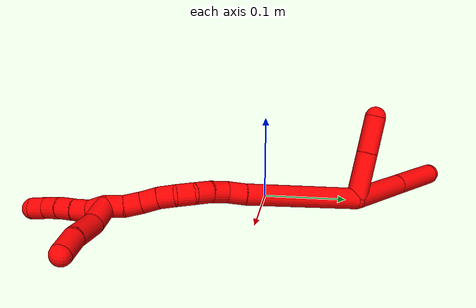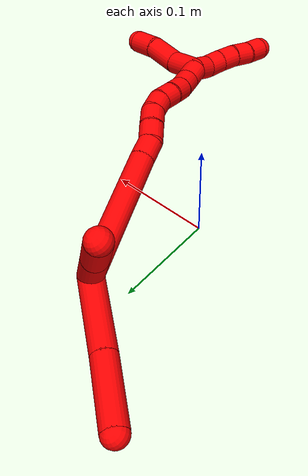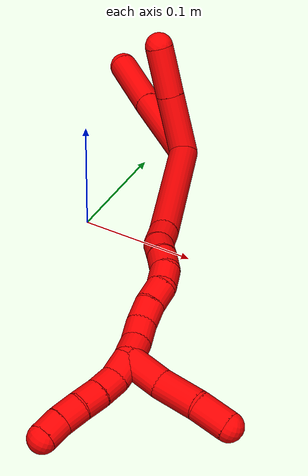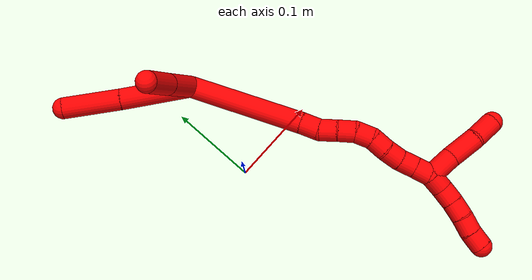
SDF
<sdf version="1.7">
 <world name="default">
  <model name="photoneo_s_sensor">
   <static>1</static>
   <pose>0 0 2 1.57079 1.57079 3.14159</pose>
   <link name="link">
    <inertial><mass>0.1</mass></inertial>
    <sensor name="sensor" type="depth">
     <update_rate>30</update_rate>
     <camera>
      <horizontal_fov>1.22</horizontal_fov>
      <image><width>1920</width><height>1200</height><format>B8G8R8</format></image>
      <clip><near>0.1</near><far>4</far></clip>
      <depth_camera><output>points</output></depth_camera>
     </camera>
     <plugin name="camera_plugin" filename="libgazebo_ros_depth_camera.so">
      <baseline>0.2</baseline>
      <alwaysOn>1</alwaysOn>
      <updateRate>0.0</updateRate>
      <cameraName>camera_ir</cameraName>
      <imageTopicName>/camera/color/image_raw</imageTopicName>
      <cameraInfoTopicName>/camera/color/camera_info</cameraInfoTopicName>
      <depthImageTopicName>/camera/depth/image_raw</depthImageTopicName>
      <depthImageCameraInfoTopicName>/camera/depth/camera_info</depthImageCameraInfoTopicName>
      <pointCloudTopicName>/camera/depth/points</pointCloudTopicName>
      <frameName>fr_optical</frameName>
      <pointCloudCutoff>0.1</pointCloudCutoff>
      <pointCloudCutoffMax>2.0</pointCloudCutoffMax>
      <distortionK1>0</distortionK1>
      <distortionK2>0</distortionK2>
      <distortionK3>0</distortionK3>
      <distortionT1>0</distortionT1>
      <distortionT2>0</distortionT2>
      <CxPrime>0</CxPrime>
      <Cx>0</Cx>
      <Cy>0</Cy>
      <focalLength>0</focalLength>
      <hackBaseline>0</hackBaseline>
     </plugin>
    </sensor>
   </link>
  </model>
  <model name="bin">
   <static>1</static>
   <link name="bottom">
    <collision name="collision-bottom">
     <pose>0 0 -0.01 0 -0 0</pose>
     <geometry><box><size>0.8 0.6 0.02</size></box></geometry>
     <surface>
      <friction><ode><mu>100</mu><mu2>100</mu2></ode></friction>
      <contact><collide_bitmask>65535</collide_bitmask></contact>
     </surface>
    </collision>
   </link>
   <link name="west_wall">
    <collision name="collision-west_wall">
     <pose>-0.41 0 0.1 0 -0 0</pose>
     <geometry><box><size>0.02 0.6 0.2</size></box></geometry>
     <surface>
      <friction><ode><mu>100</mu><mu2>100</mu2></ode></friction>
      <contact><collide_bitmask>65535</collide_bitmask></contact>
     </surface>
    </collision>
   </link>
   <link name="east_wall">
    <collision name="collision-east_wall">
     <pose>0.41 0 0.1 0 -0 0</pose>
     <geometry><box><size>0.02 0.6 0.2</size></box></geometry>
     <surface>
      <friction><ode><mu>100</mu><mu2>100</mu2></ode></friction>
      <contact><collide_bitmask>65535</collide_bitmask></contact>
     </surface>
    </collision>
   </link>
   <link name="south_wall">
    <collision name="collision-south_wall">
     <pose>0 -0.31 0.1 0 -0 0</pose>
     <geometry><box><size>0.8 0.02 0.2</size></box></geometry>
     <surface>
      <friction><ode><mu>100</mu><mu2>100</mu2></ode></friction>
      <contact><collide_bitmask>65535</collide_bitmask></contact>
     </surface>
    </collision>
   </link>
   <link name="north_wall">
    <collision name="collision-north_wall">
     <pose>0 0.31 0.1 0 -0 0</pose>
     <geometry><box><size>0.8 0.02 0.2</size></box></geometry>
     <surface>
      <friction><ode><mu>100</mu><mu2>100</mu2></ode></friction>
      <contact><collide_bitmask>65535</collide_bitmask></contact>
     </surface>
    </collision>
   </link>
  </model>
  <model name="2">
   <static>0</static>
   <link name="2">
    <collision name="collision-cylinder-e_1_2_8">
     <pose>-0.034965 0.021528 -0.001807 -1.65454 -1.01734 1.0902</pose>
     <geometry><cylinder><radius>0.0125</radius><length>0.082201</length></cylinder></geometry>
     <surface>
      <friction><ode><mu>1.16</mu><mu2>1.16</mu2><slip1>0</slip1><slip2>0</slip2></ode></friction>
      <contact><ode><kp>1e+06</kp><kd>1</kd><max_vel>0</max_vel><min_depth>0.001</min_depth></ode></contact>
     </surface>
    </collision>
    <visual name="visual-cylinder-e_1_2_8">
     <pose>-0.034965 0.021528 -0.001807 -1.65454 -1.01734 1.0902</pose>
     <geometry><cylinder><radius>0.0125</radius><length>0.082201</length></cylinder></geometry>
     <material><ambient>1 0 0 1</ambient></material>
    </visual>
    <collision name="collision-cylinder-e_2_8_6">
     <pose>-0.098506 0.061277 -0.004342 -1.61073 -1.00281 1.03684</pose>
     <geometry><cylinder><radius>0.0125</radius><length>0.067799</length></cylinder></geometry>
     <surface>
      <friction><ode><mu>1.16</mu><mu2>1.16</mu2><slip1>0</slip1><slip2>0</slip2></ode></friction>
      <contact><ode><kp>1e+06</kp><kd>1</kd><max_vel>0</max_vel><min_depth>0.001</min_depth></ode></contact>
     </surface>
    </collision>
    <visual name="visual-cylinder-e_2_8_6">
     <pose>-0.098506 0.061277 -0.004342 -1.61073 -1.00281 1.03684</pose>
     <geometry><cylinder><radius>0.0125</radius><length>0.067799</length></cylinder></geometry>
     <material><ambient>1 0 0 1</ambient></material>
    </visual>
    <collision name="collision-cylinder-e_1_2_9">
     <pose>-0.016799 -0.005669 0.021111 0.262328 -0.655243 -0.089612</pose>
     <geometry><cylinder><radius>0.0125</radius><length>0.055137</length></cylinder></geometry>
     <surface>
      <friction><ode><mu>1.16</mu><mu2>1.16</mu2><slip1>0</slip1><slip2>0</slip2></ode></friction>
      <contact><ode><kp>1e+06</kp><kd>1</kd><max_vel>0</max_vel><min_depth>0.001</min_depth></ode></contact>
     </surface>
    </collision>
    <visual name="visual-cylinder-e_1_2_9">
     <pose>-0.016799 -0.005669 0.021111 0.262328 -0.655243 -0.089612</pose>
     <geometry><cylinder><radius>0.0125</radius><length>0.055137</length></cylinder></geometry>
     <material><ambient>1 0 0 1</ambient></material>
    </visual>
    <collision name="collision-cylinder-e_2_9_5">
     <pose>-0.047034 -0.016059 0.059553 0.265978 -0.642219 -0.088936</pose>
     <geometry><cylinder><radius>0.0125</radius><length>0.044863</length></cylinder></geometry>
     <surface>
      <friction><ode><mu>1.16</mu><mu2>1.16</mu2><slip1>0</slip1><slip2>0</slip2></ode></friction>
      <contact><ode><kp>1e+06</kp><kd>1</kd><max_vel>0</max_vel><min_depth>0.001</min_depth></ode></contact>
     </surface>
    </collision>
    <visual name="visual-cylinder-e_2_9_5">
     <pose>-0.047034 -0.016059 0.059553 0.265978 -0.642219 -0.088936</pose>
     <geometry><cylinder><radius>0.0125</radius><length>0.044863</length></cylinder></geometry>
     <material><ambient>1 0 0 1</ambient></material>
    </visual>
    <collision name="collision-cylinder-e_1_2_10">
     <pose>0.033211 -0.059753 -0.006699 1.68244 0.504649 0.561449</pose>
     <geometry><cylinder><radius>0.0125</radius><length>0.137379</length></cylinder></geometry>
     <surface>
      <friction><ode><mu>1.16</mu><mu2>1.16</mu2><slip1>0</slip1><slip2>0</slip2></ode></friction>
      <contact><ode><kp>1e+06</kp><kd>1</kd><max_vel>0</max_vel><min_depth>0.001</min_depth></ode></contact>
     </surface>
    </collision>
    <visual name="visual-cylinder-e_1_2_10">
     <pose>0.033211 -0.059753 -0.006699 1.68244 0.504649 0.561449</pose>
     <geometry><cylinder><radius>0.0125</radius><length>0.137379</length></cylinder></geometry>
     <material><ambient>1 0 0 1</ambient></material>
    </visual>
    <collision name="collision-cylinder-e_2_10_11">
     <pose>0.070999 -0.12966 -0.014091 1.63898 0.422522 0.451389</pose>
     <geometry><cylinder><radius>0.0125</radius><length>0.02232</length></cylinder></geometry>
     <surface>
      <friction><ode><mu>1.16</mu><mu2>1.16</mu2><slip1>0</slip1><slip2>0</slip2></ode></friction>
      <contact><ode><kp>1e+06</kp><kd>1</kd><max_vel>0</max_vel><min_depth>0.001</min_depth></ode></contact>
     </surface>
    </collision>
    <visual name="visual-cylinder-e_2_10_11">
     <pose>0.070999 -0.12966 -0.014091 1.63898 0.422522 0.451389</pose>
     <geometry><cylinder><radius>0.0125</radius><length>0.02232</length></cylinder></geometry>
     <material><ambient>1 0 0 1</ambient></material>
    </visual>
    <collision name="collision-cylinder-e_3_11_12">
     <pose>0.08232 -0.147352 -0.013995 1.46645 0.727261 0.660456</pose>
     <geometry><cylinder><radius>0.0125</radius><length>0.02029</length></cylinder></geometry>
     <surface>
      <friction><ode><mu>1.16</mu><mu2>1.16</mu2><slip1>0</slip1><slip2>0</slip2></ode></friction>
      <contact><ode><kp>1e+06</kp><kd>1</kd><max_vel>0</max_vel><min_depth>0.001</min_depth></ode></contact>
     </surface>
    </collision>
    <visual name="visual-cylinder-e_3_11_12">
     <pose>0.08232 -0.147352 -0.013995 1.46645 0.727261 0.660456</pose>
     <geometry><cylinder><radius>0.0125</radius><length>0.02029</length></cylinder></geometry>
     <material><ambient>1 0 0 1</ambient></material>
    </visual>
    <collision name="collision-cylinder-e_4_12_13">
     <pose>0.096029 -0.162063 -0.013542 1.61764 0.770062 0.803233</pose>
     <geometry><cylinder><radius>0.0125</radius><length>0.020009</length></cylinder></geometry>
     <surface>
      <friction><ode><mu>1.16</mu><mu2>1.16</mu2><slip1>0</slip1><slip2>0</slip2></ode></friction>
      <contact><ode><kp>1e+06</kp><kd>1</kd><max_vel>0</max_vel><min_depth>0.001</min_depth></ode></contact>
     </surface>
    </collision>
    <visual name="visual-cylinder-e_4_12_13">
     <pose>0.096029 -0.162063 -0.013542 1.61764 0.770062 0.803233</pose>
     <geometry><cylinder><radius>0.0125</radius><length>0.020009</length></cylinder></geometry>
     <material><ambient>1 0 0 1</ambient></material>
    </visual>
    <collision name="collision-cylinder-e_5_13_14">
     <pose>0.108037 -0.177483 -0.016444 1.87244 0.528464 0.704417</pose>
     <geometry><cylinder><radius>0.0125</radius><length>0.020001</length></cylinder></geometry>
     <surface>
      <friction><ode><mu>1.16</mu><mu2>1.16</mu2><slip1>0</slip1><slip2>0</slip2></ode></friction>
      <contact><ode><kp>1e+06</kp><kd>1</kd><max_vel>0</max_vel><min_depth>0.001</min_depth></ode></contact>
     </surface>
    </collision>
    <visual name="visual-cylinder-e_5_13_14">
     <pose>0.108037 -0.177483 -0.016444 1.87244 0.528464 0.704417</pose>
     <geometry><cylinder><radius>0.0125</radius><length>0.020001</length></cylinder></geometry>
     <material><ambient>1 0 0 1</ambient></material>
    </visual>
    <collision name="collision-cylinder-e_6_14_15">
     <pose>0.115522 -0.194129 -0.023858 2.09424 0.246791 0.423134</pose>
     <geometry><cylinder><radius>0.0125</radius><length>0.020001</length></cylinder></geometry>
     <surface>
      <friction><ode><mu>1.16</mu><mu2>1.16</mu2><slip1>0</slip1><slip2>0</slip2></ode></friction>
      <contact><ode><kp>1e+06</kp><kd>1</kd><max_vel>0</max_vel><min_depth>0.001</min_depth></ode></contact>
     </surface>
    </collision>
    <visual name="visual-cylinder-e_6_14_15">
     <pose>0.115522 -0.194129 -0.023858 2.09424 0.246791 0.423134</pose>
     <geometry><cylinder><radius>0.0125</radius><length>0.020001</length></cylinder></geometry>
     <material><ambient>1 0 0 1</ambient></material>
    </visual>
    <collision name="collision-cylinder-e_7_15_16">
     <pose>0.121752 -0.210091 -0.03404 2.18514 0.388407 0.7253</pose>
     <geometry><cylinder><radius>0.0125</radius><length>0.02</length></cylinder></geometry>
     <surface>
      <friction><ode><mu>1.16</mu><mu2>1.16</mu2><slip1>0</slip1><slip2>0</slip2></ode></friction>
      <contact><ode><kp>1e+06</kp><kd>1</kd><max_vel>0</max_vel><min_depth>0.001</min_depth></ode></contact>
     </surface>
    </collision>
    <visual name="visual-cylinder-e_7_15_16">
     <pose>0.121752 -0.210091 -0.03404 2.18514 0.388407 0.7253</pose>
     <geometry><cylinder><radius>0.0125</radius><length>0.02</length></cylinder></geometry>
     <material><ambient>1 0 0 1</ambient></material>
    </visual>
    <collision name="collision-cylinder-e_8_16_17">
     <pose>0.130381 -0.225511 -0.043224 2.02628 0.505343 0.784986</pose>
     <geometry><cylinder><radius>0.0125</radius><length>0.02</length></cylinder></geometry>
     <surface>
      <friction><ode><mu>1.16</mu><mu2>1.16</mu2><slip1>0</slip1><slip2>0</slip2></ode></friction>
      <contact><ode><kp>1e+06</kp><kd>1</kd><max_vel>0</max_vel><min_depth>0.001</min_depth></ode></contact>
     </surface>
    </collision>
    <visual name="visual-cylinder-e_8_16_17">
     <pose>0.130381 -0.225511 -0.043224 2.02628 0.505343 0.784986</pose>
     <geometry><cylinder><radius>0.0125</radius><length>0.02</length></cylinder></geometry>
     <material><ambient>1 0 0 1</ambient></material>
    </visual>
    <collision name="collision-cylinder-e_9_17_1">
     <pose>0.138983 -0.242354 -0.049341 1.81804 0.3856 0.49113</pose>
     <geometry><cylinder><radius>0.0125</radius><length>0.02</length></cylinder></geometry>
     <surface>
      <friction><ode><mu>1.16</mu><mu2>1.16</mu2><slip1>0</slip1><slip2>0</slip2></ode></friction>
      <contact><ode><kp>1e+06</kp><kd>1</kd><max_vel>0</max_vel><min_depth>0.001</min_depth></ode></contact>
     </surface>
    </collision>
    <visual name="visual-cylinder-e_9_17_1">
     <pose>0.138983 -0.242354 -0.049341 1.81804 0.3856 0.49113</pose>
     <geometry><cylinder><radius>0.0125</radius><length>0.02</length></cylinder></geometry>
     <material><ambient>1 0 0 1</ambient></material>
    </visual>
    <collision name="collision-cylinder-e_1_1_18">
     <pose>0.159483 -0.250354 -0.051287 -1.25528 1.50904 -1.19712</pose>
     <geometry><cylinder><radius>0.0125</radius><length>0.033542</length></cylinder></geometry>
     <surface>
      <friction><ode><mu>1.16</mu><mu2>1.16</mu2><slip1>0</slip1><slip2>0</slip2></ode></friction>
      <contact><ode><kp>1e+06</kp><kd>1</kd><max_vel>0</max_vel><min_depth>0.001</min_depth></ode></contact>
     </surface>
    </collision>
    <visual name="visual-cylinder-e_1_1_18">
     <pose>0.159483 -0.250354 -0.051287 -1.25528 1.50904 -1.19712</pose>
     <geometry><cylinder><radius>0.0125</radius><length>0.033542</length></cylinder></geometry>
     <material><ambient>1 0 0 1</ambient></material>
    </visual>
    <collision name="collision-cylinder-e_2_18_19">
     <pose>0.194282 -0.251109 -0.046863 0.401034 1.32889 0.315739</pose>
     <geometry><cylinder><radius>0.0125</radius><length>0.037203</length></cylinder></geometry>
     <surface>
      <friction><ode><mu>1.16</mu><mu2>1.16</mu2><slip1>0</slip1><slip2>0</slip2></ode></friction>
      <contact><ode><kp>1e+06</kp><kd>1</kd><max_vel>0</max_vel><min_depth>0.001</min_depth></ode></contact>
     </surface>
    </collision>
    <visual name="visual-cylinder-e_2_18_19">
     <pose>0.194282 -0.251109 -0.046863 0.401034 1.32889 0.315739</pose>
     <geometry><cylinder><radius>0.0125</radius><length>0.037203</length></cylinder></geometry>
     <material><ambient>1 0 0 1</ambient></material>
    </visual>
    <collision name="collision-cylinder-e_3_19_4">
     <pose>0.22692 -0.252107 -0.041816 -0.665499 1.48858 -0.616309</pose>
     <geometry><cylinder><radius>0.0125</radius><length>0.029255</length></cylinder></geometry>
     <surface>
      <friction><ode><mu>1.16</mu><mu2>1.16</mu2><slip1>0</slip1><slip2>0</slip2></ode></friction>
      <contact><ode><kp>1e+06</kp><kd>1</kd><max_vel>0</max_vel><min_depth>0.001</min_depth></ode></contact>
     </surface>
    </collision>
    <visual name="visual-cylinder-e_3_19_4">
     <pose>0.22692 -0.252107 -0.041816 -0.665499 1.48858 -0.616309</pose>
     <geometry><cylinder><radius>0.0125</radius><length>0.029255</length></cylinder></geometry>
     <material><ambient>1 0 0 1</ambient></material>
    </visual>
    <collision name="collision-cylinder-e_1_1_20">
     <pose>0.14464 -0.258588 -0.05823 2.31091 0.190753 0.427249</pose>
     <geometry><cylinder><radius>0.0125</radius><length>0.02</length></cylinder></geometry>
     <surface>
      <friction><ode><mu>1.16</mu><mu2>1.16</mu2><slip1>0</slip1><slip2>0</slip2></ode></friction>
      <contact><ode><kp>1e+06</kp><kd>1</kd><max_vel>0</max_vel><min_depth>0.001</min_depth></ode></contact>
     </surface>
    </collision>
    <visual name="visual-cylinder-e_1_1_20">
     <pose>0.14464 -0.258588 -0.05823 2.31091 0.190753 0.427249</pose>
     <geometry><cylinder><radius>0.0125</radius><length>0.02</length></cylinder></geometry>
     <material><ambient>1 0 0 1</ambient></material>
    </visual>
    <collision name="collision-cylinder-e_2_20_21">
     <pose>0.146672 -0.274794 -0.069297 2.0316 0.013542 0.021842</pose>
     <geometry><cylinder><radius>0.0125</radius><length>0.02</length></cylinder></geometry>
     <surface>
      <friction><ode><mu>1.16</mu><mu2>1.16</mu2><slip1>0</slip1><slip2>0</slip2></ode></friction>
      <contact><ode><kp>1e+06</kp><kd>1</kd><max_vel>0</max_vel><min_depth>0.001</min_depth></ode></contact>
     </surface>
    </collision>
    <visual name="visual-cylinder-e_2_20_21">
     <pose>0.146672 -0.274794 -0.069297 2.0316 0.013542 0.021842</pose>
     <geometry><cylinder><radius>0.0125</radius><length>0.02</length></cylinder></geometry>
     <material><ambient>1 0 0 1</ambient></material>
    </visual>
    <collision name="collision-cylinder-e_3_21_22">
     <pose>0.146014 -0.292623 -0.078286 2.04397 -0.079414 -0.12976</pose>
     <geometry><cylinder><radius>0.0125</radius><length>0.02</length></cylinder></geometry>
     <surface>
      <friction><ode><mu>1.16</mu><mu2>1.16</mu2><slip1>0</slip1><slip2>0</slip2></ode></friction>
      <contact><ode><kp>1e+06</kp><kd>1</kd><max_vel>0</max_vel><min_depth>0.001</min_depth></ode></contact>
     </surface>
    </collision>
    <visual name="visual-cylinder-e_3_21_22">
     <pose>0.146014 -0.292623 -0.078286 2.04397 -0.079414 -0.12976</pose>
     <geometry><cylinder><radius>0.0125</radius><length>0.02</length></cylinder></geometry>
     <material><ambient>1 0 0 1</ambient></material>
    </visual>
    <collision name="collision-cylinder-e_4_22_23">
     <pose>0.144242 -0.309662 -0.088518 2.17934 -0.097957 -0.187244</pose>
     <geometry><cylinder><radius>0.0125</radius><length>0.02</length></cylinder></geometry>
     <surface>
      <friction><ode><mu>1.16</mu><mu2>1.16</mu2><slip1>0</slip1><slip2>0</slip2></ode></friction>
      <contact><ode><kp>1e+06</kp><kd>1</kd><max_vel>0</max_vel><min_depth>0.001</min_depth></ode></contact>
     </surface>
    </collision>
    <visual name="visual-cylinder-e_4_22_23">
     <pose>0.144242 -0.309662 -0.088518 2.17934 -0.097957 -0.187244</pose>
     <geometry><cylinder><radius>0.0125</radius><length>0.02</length></cylinder></geometry>
     <material><ambient>1 0 0 1</ambient></material>
    </visual>
    <collision name="collision-cylinder-e_5_23_3">
     <pose>0.143696 -0.326317 -0.099474 2.12596 0.043221 0.07764</pose>
     <geometry><cylinder><radius>0.0125</radius><length>0.02</length></cylinder></geometry>
     <surface>
      <friction><ode><mu>1.16</mu><mu2>1.16</mu2><slip1>0</slip1><slip2>0</slip2></ode></friction>
      <contact><ode><kp>1e+06</kp><kd>1</kd><max_vel>0</max_vel><min_depth>0.001</min_depth></ode></contact>
     </surface>
    </collision>
    <visual name="visual-cylinder-e_5_23_3">
     <pose>0.143696 -0.326317 -0.099474 2.12596 0.043221 0.07764</pose>
     <geometry><cylinder><radius>0.0125</radius><length>0.02</length></cylinder></geometry>
     <material><ambient>1 0 0 1</ambient></material>
    </visual>
    <collision name="collision-sphere-3">
     <pose>0.144128 -0.334808 -0.10474 0 -0 0</pose>
     <geometry><sphere><radius>0.0125</radius></sphere></geometry>
     <surface>
      <friction><ode><mu>1.16</mu><mu2>1.16</mu2><slip1>0</slip1><slip2>0</slip2></ode></friction>
      <contact><ode><kp>1e+06</kp><kd>1</kd><max_vel>0</max_vel><min_depth>0.001</min_depth></ode></contact>
     </surface>
    </collision>
    <visual name="visual-sphere-3">
     <pose>0.144128 -0.334808 -0.10474 0 -0 0</pose>
     <geometry><sphere><radius>0.0125</radius></sphere></geometry>
     <material><ambient>1 0 0 1</ambient></material>
    </visual>
    <collision name="collision-sphere-23">
     <pose>0.143264 -0.317827 -0.094208 0 -0 0</pose>
     <geometry><sphere><radius>0.0125</radius></sphere></geometry>
     <surface>
      <friction><ode><mu>1.16</mu><mu2>1.16</mu2><slip1>0</slip1><slip2>0</slip2></ode></friction>
      <contact><ode><kp>1e+06</kp><kd>1</kd><max_vel>0</max_vel><min_depth>0.001</min_depth></ode></contact>
     </surface>
    </collision>
    <visual name="visual-sphere-23">
     <pose>0.143264 -0.317827 -0.094208 0 -0 0</pose>
     <geometry><sphere><radius>0.0125</radius></sphere></geometry>
     <material><ambient>1 0 0 1</ambient></material>
    </visual>
    <collision name="collision-sphere-22">
     <pose>0.14522 -0.301496 -0.082829 0 -0 0</pose>
     <geometry><sphere><radius>0.0125</radius></sphere></geometry>
     <surface>
      <friction><ode><mu>1.16</mu><mu2>1.16</mu2><slip1>0</slip1><slip2>0</slip2></ode></friction>
      <contact><ode><kp>1e+06</kp><kd>1</kd><max_vel>0</max_vel><min_depth>0.001</min_depth></ode></contact>
     </surface>
    </collision>
    <visual name="visual-sphere-22">
     <pose>0.14522 -0.301496 -0.082829 0 -0 0</pose>
     <geometry><sphere><radius>0.0125</radius></sphere></geometry>
     <material><ambient>1 0 0 1</ambient></material>
    </visual>
    <collision name="collision-sphere-21">
     <pose>0.146807 -0.28375 -0.073744 0 -0 0</pose>
     <geometry><sphere><radius>0.0125</radius></sphere></geometry>
     <surface>
      <friction><ode><mu>1.16</mu><mu2>1.16</mu2><slip1>0</slip1><slip2>0</slip2></ode></friction>
      <contact><ode><kp>1e+06</kp><kd>1</kd><max_vel>0</max_vel><min_depth>0.001</min_depth></ode></contact>
     </surface>
    </collision>
    <visual name="visual-sphere-21">
     <pose>0.146807 -0.28375 -0.073744 0 -0 0</pose>
     <geometry><sphere><radius>0.0125</radius></sphere></geometry>
     <material><ambient>1 0 0 1</ambient></material>
    </visual>
    <collision name="collision-sphere-20">
     <pose>0.146536 -0.265838 -0.064851 0 -0 0</pose>
     <geometry><sphere><radius>0.0125</radius></sphere></geometry>
     <surface>
      <friction><ode><mu>1.16</mu><mu2>1.16</mu2><slip1>0</slip1><slip2>0</slip2></ode></friction>
      <contact><ode><kp>1e+06</kp><kd>1</kd><max_vel>0</max_vel><min_depth>0.001</min_depth></ode></contact>
     </surface>
    </collision>
    <visual name="visual-sphere-20">
     <pose>0.146536 -0.265838 -0.064851 0 -0 0</pose>
     <geometry><sphere><radius>0.0125</radius></sphere></geometry>
     <material><ambient>1 0 0 1</ambient></material>
    </visual>
    <collision name="collision-sphere-4">
     <pose>0.241498 -0.251365 -0.040871 0 -0 0</pose>
     <geometry><sphere><radius>0.0125</radius></sphere></geometry>
     <surface>
      <friction><ode><mu>1.16</mu><mu2>1.16</mu2><slip1>0</slip1><slip2>0</slip2></ode></friction>
      <contact><ode><kp>1e+06</kp><kd>1</kd><max_vel>0</max_vel><min_depth>0.001</min_depth></ode></contact>
     </surface>
    </collision>
    <visual name="visual-sphere-4">
     <pose>0.241498 -0.251365 -0.040871 0 -0 0</pose>
     <geometry><sphere><radius>0.0125</radius></sphere></geometry>
     <material><ambient>1 0 0 1</ambient></material>
    </visual>
    <collision name="collision-sphere-10">
     <pose>0.066423 -0.119505 -0.013398 0 -0 0</pose>
     <geometry><sphere><radius>0.0125</radius></sphere></geometry>
     <surface>
      <friction><ode><mu>1.16</mu><mu2>1.16</mu2><slip1>0</slip1><slip2>0</slip2></ode></friction>
      <contact><ode><kp>1e+06</kp><kd>1</kd><max_vel>0</max_vel><min_depth>0.001</min_depth></ode></contact>
     </surface>
    </collision>
    <visual name="visual-sphere-10">
     <pose>0.066423 -0.119505 -0.013398 0 -0 0</pose>
     <geometry><sphere><radius>0.0125</radius></sphere></geometry>
     <material><ambient>1 0 0 1</ambient></material>
    </visual>
    <collision name="collision-sphere-5">
     <pose>-0.06047 -0.02078 0.076884 0 -0 0</pose>
     <geometry><sphere><radius>0.0125</radius></sphere></geometry>
     <surface>
      <friction><ode><mu>1.16</mu><mu2>1.16</mu2><slip1>0</slip1><slip2>0</slip2></ode></friction>
      <contact><ode><kp>1e+06</kp><kd>1</kd><max_vel>0</max_vel><min_depth>0.001</min_depth></ode></contact>
     </surface>
    </collision>
    <visual name="visual-sphere-5">
     <pose>-0.06047 -0.02078 0.076884 0 -0 0</pose>
     <geometry><sphere><radius>0.0125</radius></sphere></geometry>
     <material><ambient>1 0 0 1</ambient></material>
    </visual>
    <collision name="collision-sphere-6">
     <pose>-0.127083 0.079499 -0.00507 0 -0 0</pose>
     <geometry><sphere><radius>0.0125</radius></sphere></geometry>
     <surface>
      <friction><ode><mu>1.16</mu><mu2>1.16</mu2><slip1>0</slip1><slip2>0</slip2></ode></friction>
      <contact><ode><kp>1e+06</kp><kd>1</kd><max_vel>0</max_vel><min_depth>0.001</min_depth></ode></contact>
     </surface>
    </collision>
    <visual name="visual-sphere-6">
     <pose>-0.127083 0.079499 -0.00507 0 -0 0</pose>
     <geometry><sphere><radius>0.0125</radius></sphere></geometry>
     <material><ambient>1 0 0 1</ambient></material>
    </visual>
    <collision name="collision-sphere-9">
     <pose>-0.033598 -0.011337 0.042222 0 -0 0</pose>
     <geometry><sphere><radius>0.0125</radius></sphere></geometry>
     <surface>
      <friction><ode><mu>1.16</mu><mu2>1.16</mu2><slip1>0</slip1><slip2>0</slip2></ode></friction>
      <contact><ode><kp>1e+06</kp><kd>1</kd><max_vel>0</max_vel><min_depth>0.001</min_depth></ode></contact>
     </surface>
    </collision>
    <visual name="visual-sphere-9">
     <pose>-0.033598 -0.011337 0.042222 0 -0 0</pose>
     <geometry><sphere><radius>0.0125</radius></sphere></geometry>
     <material><ambient>1 0 0 1</ambient></material>
    </visual>
    <collision name="collision-sphere-2">
     <geometry><sphere><radius>0.0125</radius></sphere></geometry>
     <surface>
      <friction><ode><mu>1.16</mu><mu2>1.16</mu2><slip1>0</slip1><slip2>0</slip2></ode></friction>
      <contact><ode><kp>1e+06</kp><kd>1</kd><max_vel>0</max_vel><min_depth>0.001</min_depth></ode></contact>
     </surface>
    </collision>
    <visual name="visual-sphere-2">
     <geometry><sphere><radius>0.0125</radius></sphere></geometry>
     <material><ambient>1 0 0 1</ambient></material>
    </visual>
    <collision name="collision-sphere-19">
     <pose>0.212342 -0.252849 -0.042761 0 -0 0</pose>
     <geometry><sphere><radius>0.0125</radius></sphere></geometry>
     <surface>
      <friction><ode><mu>1.16</mu><mu2>1.16</mu2><slip1>0</slip1><slip2>0</slip2></ode></friction>
      <contact><ode><kp>1e+06</kp><kd>1</kd><max_vel>0</max_vel><min_depth>0.001</min_depth></ode></contact>
     </surface>
    </collision>
    <visual name="visual-sphere-19">
     <pose>0.212342 -0.252849 -0.042761 0 -0 0</pose>
     <geometry><sphere><radius>0.0125</radius></sphere></geometry>
     <material><ambient>1 0 0 1</ambient></material>
    </visual>
    <collision name="collision-sphere-8">
     <pose>-0.069929 0.043056 -0.003614 0 -0 0</pose>
     <geometry><sphere><radius>0.0125</radius></sphere></geometry>
     <surface>
      <friction><ode><mu>1.16</mu><mu2>1.16</mu2><slip1>0</slip1><slip2>0</slip2></ode></friction>
      <contact><ode><kp>1e+06</kp><kd>1</kd><max_vel>0</max_vel><min_depth>0.001</min_depth></ode></contact>
     </surface>
    </collision>
    <visual name="visual-sphere-8">
     <pose>-0.069929 0.043056 -0.003614 0 -0 0</pose>
     <geometry><sphere><radius>0.0125</radius></sphere></geometry>
     <material><ambient>1 0 0 1</ambient></material>
    </visual>
    <collision name="collision-sphere-11">
     <pose>0.075575 -0.139815 -0.014785 0 -0 0</pose>
     <geometry><sphere><radius>0.0125</radius></sphere></geometry>
     <surface>
      <friction><ode><mu>1.16</mu><mu2>1.16</mu2><slip1>0</slip1><slip2>0</slip2></ode></friction>
      <contact><ode><kp>1e+06</kp><kd>1</kd><max_vel>0</max_vel><min_depth>0.001</min_depth></ode></contact>
     </surface>
    </collision>
    <visual name="visual-sphere-11">
     <pose>0.075575 -0.139815 -0.014785 0 -0 0</pose>
     <geometry><sphere><radius>0.0125</radius></sphere></geometry>
     <material><ambient>1 0 0 1</ambient></material>
    </visual>
    <collision name="collision-sphere-12">
     <pose>0.089065 -0.154889 -0.013206 0 -0 0</pose>
     <geometry><sphere><radius>0.0125</radius></sphere></geometry>
     <surface>
      <friction><ode><mu>1.16</mu><mu2>1.16</mu2><slip1>0</slip1><slip2>0</slip2></ode></friction>
      <contact><ode><kp>1e+06</kp><kd>1</kd><max_vel>0</max_vel><min_depth>0.001</min_depth></ode></contact>
     </surface>
    </collision>
    <visual name="visual-sphere-12">
     <pose>0.089065 -0.154889 -0.013206 0 -0 0</pose>
     <geometry><sphere><radius>0.0125</radius></sphere></geometry>
     <material><ambient>1 0 0 1</ambient></material>
    </visual>
    <collision name="collision-sphere-13">
     <pose>0.102994 -0.169237 -0.013879 0 -0 0</pose>
     <geometry><sphere><radius>0.0125</radius></sphere></geometry>
     <surface>
      <friction><ode><mu>1.16</mu><mu2>1.16</mu2><slip1>0</slip1><slip2>0</slip2></ode></friction>
      <contact><ode><kp>1e+06</kp><kd>1</kd><max_vel>0</max_vel><min_depth>0.001</min_depth></ode></contact>
     </surface>
    </collision>
    <visual name="visual-sphere-13">
     <pose>0.102994 -0.169237 -0.013879 0 -0 0</pose>
     <geometry><sphere><radius>0.0125</radius></sphere></geometry>
     <material><ambient>1 0 0 1</ambient></material>
    </visual>
    <collision name="collision-sphere-14">
     <pose>0.113079 -0.18573 -0.01901 0 -0 0</pose>
     <geometry><sphere><radius>0.0125</radius></sphere></geometry>
     <surface>
      <friction><ode><mu>1.16</mu><mu2>1.16</mu2><slip1>0</slip1><slip2>0</slip2></ode></friction>
      <contact><ode><kp>1e+06</kp><kd>1</kd><max_vel>0</max_vel><min_depth>0.001</min_depth></ode></contact>
     </surface>
    </collision>
    <visual name="visual-sphere-14">
     <pose>0.113079 -0.18573 -0.01901 0 -0 0</pose>
     <geometry><sphere><radius>0.0125</radius></sphere></geometry>
     <material><ambient>1 0 0 1</ambient></material>
    </visual>
    <collision name="collision-sphere-15">
     <pose>0.117965 -0.202528 -0.028705 0 -0 0</pose>
     <geometry><sphere><radius>0.0125</radius></sphere></geometry>
     <surface>
      <friction><ode><mu>1.16</mu><mu2>1.16</mu2><slip1>0</slip1><slip2>0</slip2></ode></friction>
      <contact><ode><kp>1e+06</kp><kd>1</kd><max_vel>0</max_vel><min_depth>0.001</min_depth></ode></contact>
     </surface>
    </collision>
    <visual name="visual-sphere-15">
     <pose>0.117965 -0.202528 -0.028705 0 -0 0</pose>
     <geometry><sphere><radius>0.0125</radius></sphere></geometry>
     <material><ambient>1 0 0 1</ambient></material>
    </visual>
    <collision name="collision-sphere-16">
     <pose>0.12554 -0.217654 -0.039375 0 -0 0</pose>
     <geometry><sphere><radius>0.0125</radius></sphere></geometry>
     <surface>
      <friction><ode><mu>1.16</mu><mu2>1.16</mu2><slip1>0</slip1><slip2>0</slip2></ode></friction>
      <contact><ode><kp>1e+06</kp><kd>1</kd><max_vel>0</max_vel><min_depth>0.001</min_depth></ode></contact>
     </surface>
    </collision>
    <visual name="visual-sphere-16">
     <pose>0.12554 -0.217654 -0.039375 0 -0 0</pose>
     <geometry><sphere><radius>0.0125</radius></sphere></geometry>
     <material><ambient>1 0 0 1</ambient></material>
    </visual>
    <collision name="collision-sphere-17">
     <pose>0.135222 -0.233369 -0.047073 0 -0 0</pose>
     <geometry><sphere><radius>0.0125</radius></sphere></geometry>
     <surface>
      <friction><ode><mu>1.16</mu><mu2>1.16</mu2><slip1>0</slip1><slip2>0</slip2></ode></friction>
      <contact><ode><kp>1e+06</kp><kd>1</kd><max_vel>0</max_vel><min_depth>0.001</min_depth></ode></contact>
     </surface>
    </collision>
    <visual name="visual-sphere-17">
     <pose>0.135222 -0.233369 -0.047073 0 -0 0</pose>
     <geometry><sphere><radius>0.0125</radius></sphere></geometry>
     <material><ambient>1 0 0 1</ambient></material>
    </visual>
    <collision name="collision-sphere-1">
     <pose>0.142744 -0.251338 -0.051608 0 -0 0</pose>
     <geometry><sphere><radius>0.0125</radius></sphere></geometry>
     <surface>
      <friction><ode><mu>1.16</mu><mu2>1.16</mu2><slip1>0</slip1><slip2>0</slip2></ode></friction>
      <contact><ode><kp>1e+06</kp><kd>1</kd><max_vel>0</max_vel><min_depth>0.001</min_depth></ode></contact>
     </surface>
    </collision>
    <visual name="visual-sphere-1">
     <pose>0.142744 -0.251338 -0.051608 0 -0 0</pose>
     <geometry><sphere><radius>0.0125</radius></sphere></geometry>
     <material><ambient>1 0 0 1</ambient></material>
    </visual>
    <collision name="collision-sphere-18">
     <pose>0.176223 -0.24937 -0.050966 0 -0 0</pose>
     <geometry><sphere><radius>0.0125</radius></sphere></geometry>
     <surface>
      <friction><ode><mu>1.16</mu><mu2>1.16</mu2><slip1>0</slip1><slip2>0</slip2></ode></friction>
      <contact><ode><kp>1e+06</kp><kd>1</kd><max_vel>0</max_vel><min_depth>0.001</min_depth></ode></contact>
     </surface>
    </collision>
    <visual name="visual-sphere-18">
     <pose>0.176223 -0.24937 -0.050966 0 -0 0</pose>
     <geometry><sphere><radius>0.0125</radius></sphere></geometry>
     <material><ambient>1 0 0 1</ambient></material>
    </visual>
    <inertial>
     <pose>0.057553 -0.117054 -0.019064 0 -0 0</pose>
     <mass>0.75</mass>
     <inertia>
      <ixx>0.000369</ixx>
      <ixy>0</ixy>
      <ixz>0</ixz>
      <iyy>0.000249</iyy>
      <iyz>0</iyz>
      <izz>0.000126</izz>
     </inertia>
    </inertial>
   </link>
   <pose>0.032242 0.113443 0.013973 -0.40363 0.256057 -0.183939</pose>
  </model>
 </world>
</sdf>
